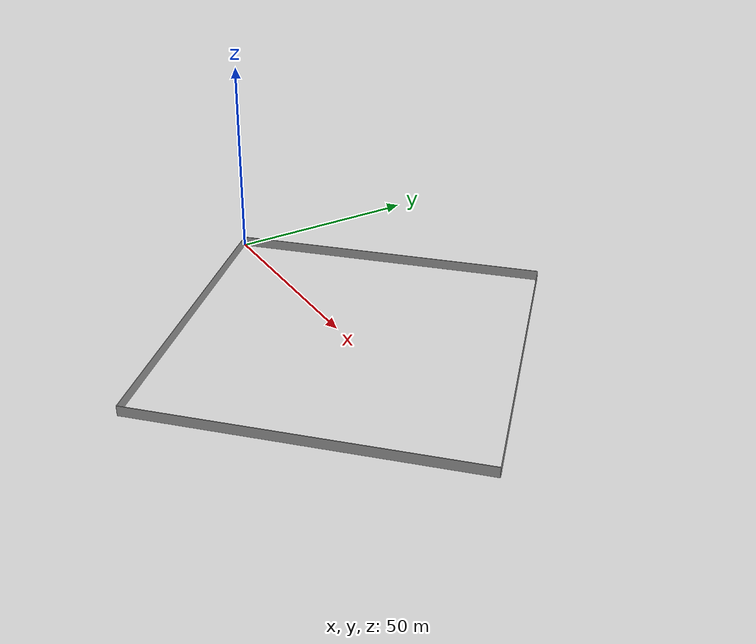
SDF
<?xml version='1.0'?>
<sdf version='1.5'>
  <model name='map3'>
    <pose>56 0 0 0 -0 0</pose>
    <link name='Wall_11'>
      <collision name='Wall_11_Collision'>
        <geometry>
          <box>
            <size>79.346 0.15 2.5</size>
          </box>
        </geometry>
        <pose>0 0 1.25 0 -0 0</pose>
      </collision>
      <visual name='Wall_11_Visual'>
        <pose>0 0 1.25 0 -0 0</pose>
        <geometry>
          <box>
            <size>79.346 0.15 2.5</size>
          </box>
        </geometry>
        <material>
          <script>
            <uri>file://media/materials/scripts/gazebo.material</uri>
            <name>Gazebo/Grey</name>
          </script>
          <ambient>1 1 1 1</ambient>
        </material>
      </visual>
      <pose>-28 28 0 0 -0 0.785398</pose>
    </link>
    <link name='Wall_13'>
      <collision name='Wall_13_Collision'>
        <geometry>
          <box>
            <size>79.346 0.15 2.5</size>
          </box>
        </geometry>
        <pose>0 0 1.25 0 -0 0</pose>
      </collision>
      <visual name='Wall_13_Visual'>
        <pose>0 0 1.25 0 -0 0</pose>
        <geometry>
          <box>
            <size>79.346 0.15 2.5</size>
          </box>
        </geometry>
        <material>
          <script>
            <uri>file://media/materials/scripts/gazebo.material</uri>
            <name>Gazebo/Grey</name>
          </script>
          <ambient>1 1 1 1</ambient>
        </material>
      </visual>
      <pose>-28 -28 0 0 0 -0.785398</pose>
    </link>
    <link name='Wall_15'>
      <collision name='Wall_15_Collision'>
        <geometry>
          <box>
            <size>79.346 0.15 2.5</size>
          </box>
        </geometry>
        <pose>0 0 1.25 0 -0 0</pose>
      </collision>
      <visual name='Wall_15_Visual'>
        <pose>0 0 1.25 0 -0 0</pose>
        <geometry>
          <box>
            <size>79.346 0.15 2.5</size>
          </box>
        </geometry>
        <material>
          <script>
            <uri>file://media/materials/scripts/gazebo.material</uri>
            <name>Gazebo/Grey</name>
          </script>
          <ambient>1 1 1 1</ambient>
        </material>
      </visual>
      <pose>28 28 0 0 0 -0.785398</pose>
    </link>
    <link name='Wall_17'>
      <collision name='Wall_17_Collision'>
        <geometry>
          <box>
            <size>79.346 0.15 2.5</size>
          </box>
        </geometry>
        <pose>0 0 1.25 0 -0 0</pose>
      </collision>
      <visual name='Wall_17_Visual'>
        <pose>0 0 1.25 0 -0 0</pose>
        <geometry>
          <box>
            <size>79.346 0.15 2.5</size>
          </box>
        </geometry>
        <material>
          <script>
            <uri>file://media/materials/scripts/gazebo.material</uri>
            <name>Gazebo/Grey</name>
          </script>
          <ambient>1 1 1 1</ambient>
        </material>
      </visual>
      <pose>28 -28 0 0 0 -2.35619</pose>
    </link>
    <static>1</static>
  </model>
</sdf>
